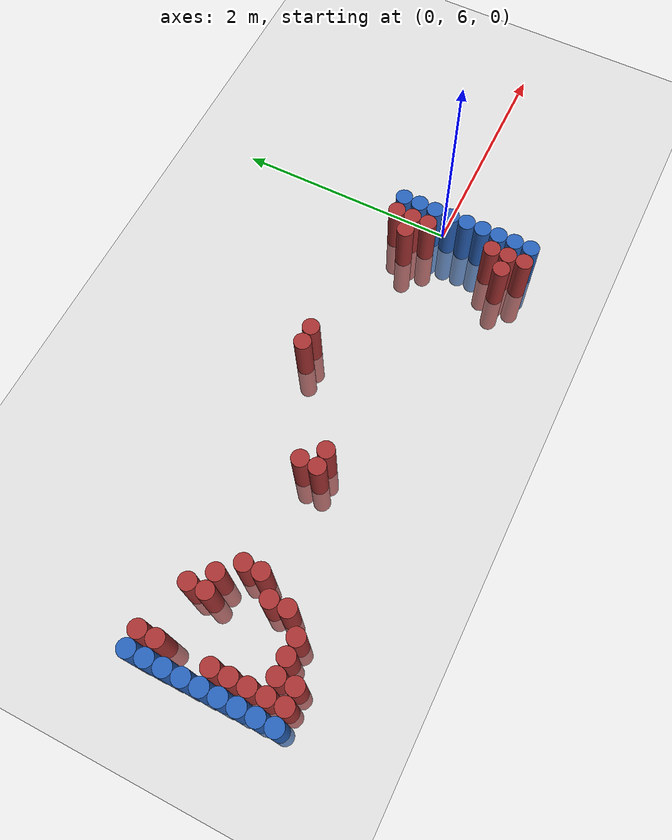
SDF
<sdf version="1.6">
 <world name="default">
  <model name="ground_plane">
   <static>1</static>
   <link name="link">
    <collision name="collision">
     <geometry><plane><normal>0 0 1</normal><size>100 100</size></plane></geometry>
     <surface><friction><ode><mu>100</mu><mu2>50</mu2></ode></friction></surface>
    </collision>
    <visual name="visual">
     <cast_shadows>0</cast_shadows>
     <geometry><plane><normal>0 0 1</normal><size>100 100</size></plane></geometry>
     <material>
      <script><uri>file://media/materials/scripts/gazebo.material</uri><name>Gazebo/Grey</name></script>
     </material>
    </visual>
   </link>
  </model>
  <model name="unit_cylinder_97">
   <static>1</static>
   <pose>-4.425000 5.325000 0.000000 0.000000 0.000000 0.000000</pose>
   <link name="link">
    <inertial>
     <mass>1</mass>
     <inertia><ixx>0.145833</ixx><ixy>0</ixy><ixz>0</ixz><iyy>0.145833</iyy><iyz>0</iyz><izz>0.125</izz></inertia>
    </inertial>
    <collision name="collision">
     <geometry><cylinder><radius>0.075000</radius><length>1</length></cylinder></geometry>
    </collision>
    <visual name="visual">
     <geometry><cylinder><radius>0.075000</radius><length>1</length></cylinder></geometry>
     <material>
      <ambient>0.152000 0.379000 0.720000 1</ambient>
      <diffuse>0.152000 0.379000 0.720000 1</diffuse>
     </material>
     <material>
      <script><name>Gazebo/Grey</name><uri>file://media/materials/scripts/gazebo.material</uri></script>
     </material>
    </visual>
   </link>
  </model>
  <model name="unit_cylinder_98">
   <static>1</static>
   <pose>-4.425000 5.475000 0.000000 0.000000 0.000000 0.000000</pose>
   <link name="link">
    <inertial>
     <mass>1</mass>
     <inertia><ixx>0.145833</ixx><ixy>0</ixy><ixz>0</ixz><iyy>0.145833</iyy><iyz>0</iyz><izz>0.125</izz></inertia>
    </inertial>
    <collision name="collision">
     <geometry><cylinder><radius>0.075000</radius><length>1</length></cylinder></geometry>
    </collision>
    <visual name="visual">
     <geometry><cylinder><radius>0.075000</radius><length>1</length></cylinder></geometry>
     <material>
      <ambient>0.152000 0.379000 0.720000 1</ambient>
      <diffuse>0.152000 0.379000 0.720000 1</diffuse>
     </material>
     <material>
      <script><name>Gazebo/Grey</name><uri>file://media/materials/scripts/gazebo.material</uri></script>
     </material>
    </visual>
   </link>
  </model>
  <model name="unit_cylinder_99">
   <static>1</static>
   <pose>-4.425000 5.625000 0.000000 0.000000 0.000000 0.000000</pose>
   <link name="link">
    <inertial>
     <mass>1</mass>
     <inertia><ixx>0.145833</ixx><ixy>0</ixy><ixz>0</ixz><iyy>0.145833</iyy><iyz>0</iyz><izz>0.125</izz></inertia>
    </inertial>
    <collision name="collision">
     <geometry><cylinder><radius>0.075000</radius><length>1</length></cylinder></geometry>
    </collision>
    <visual name="visual">
     <geometry><cylinder><radius>0.075000</radius><length>1</length></cylinder></geometry>
     <material>
      <ambient>0.152000 0.379000 0.720000 1</ambient>
      <diffuse>0.152000 0.379000 0.720000 1</diffuse>
     </material>
     <material>
      <script><name>Gazebo/Grey</name><uri>file://media/materials/scripts/gazebo.material</uri></script>
     </material>
    </visual>
   </link>
  </model>
  <model name="unit_cylinder_100">
   <static>1</static>
   <pose>-4.425000 5.775000 0.000000 0.000000 0.000000 0.000000</pose>
   <link name="link">
    <inertial>
     <mass>1</mass>
     <inertia><ixx>0.145833</ixx><ixy>0</ixy><ixz>0</ixz><iyy>0.145833</iyy><iyz>0</iyz><izz>0.125</izz></inertia>
    </inertial>
    <collision name="collision">
     <geometry><cylinder><radius>0.075000</radius><length>1</length></cylinder></geometry>
    </collision>
    <visual name="visual">
     <geometry><cylinder><radius>0.075000</radius><length>1</length></cylinder></geometry>
     <material>
      <ambient>0.152000 0.379000 0.720000 1</ambient>
      <diffuse>0.152000 0.379000 0.720000 1</diffuse>
     </material>
     <material>
      <script><name>Gazebo/Grey</name><uri>file://media/materials/scripts/gazebo.material</uri></script>
     </material>
    </visual>
   </link>
  </model>
  <model name="unit_cylinder_101">
   <static>1</static>
   <pose>-4.425000 5.925000 0.000000 0.000000 0.000000 0.000000</pose>
   <link name="link">
    <inertial>
     <mass>1</mass>
     <inertia><ixx>0.145833</ixx><ixy>0</ixy><ixz>0</ixz><iyy>0.145833</iyy><iyz>0</iyz><izz>0.125</izz></inertia>
    </inertial>
    <collision name="collision">
     <geometry><cylinder><radius>0.075000</radius><length>1</length></cylinder></geometry>
    </collision>
    <visual name="visual">
     <geometry><cylinder><radius>0.075000</radius><length>1</length></cylinder></geometry>
     <material>
      <ambient>0.152000 0.379000 0.720000 1</ambient>
      <diffuse>0.152000 0.379000 0.720000 1</diffuse>
     </material>
     <material>
      <script><name>Gazebo/Grey</name><uri>file://media/materials/scripts/gazebo.material</uri></script>
     </material>
    </visual>
   </link>
  </model>
  <model name="unit_cylinder_102">
   <static>1</static>
   <pose>-4.425000 6.075000 0.000000 0.000000 0.000000 0.000000</pose>
   <link name="link">
    <inertial>
     <mass>1</mass>
     <inertia><ixx>0.145833</ixx><ixy>0</ixy><ixz>0</ixz><iyy>0.145833</iyy><iyz>0</iyz><izz>0.125</izz></inertia>
    </inertial>
    <collision name="collision">
     <geometry><cylinder><radius>0.075000</radius><length>1</length></cylinder></geometry>
    </collision>
    <visual name="visual">
     <geometry><cylinder><radius>0.075000</radius><length>1</length></cylinder></geometry>
     <material>
      <ambient>0.152000 0.379000 0.720000 1</ambient>
      <diffuse>0.152000 0.379000 0.720000 1</diffuse>
     </material>
     <material>
      <script><name>Gazebo/Grey</name><uri>file://media/materials/scripts/gazebo.material</uri></script>
     </material>
    </visual>
   </link>
  </model>
  <model name="unit_cylinder_103">
   <static>1</static>
   <pose>-4.425000 6.225000 0.000000 0.000000 0.000000 0.000000</pose>
   <link name="link">
    <inertial>
     <mass>1</mass>
     <inertia><ixx>0.145833</ixx><ixy>0</ixy><ixz>0</ixz><iyy>0.145833</iyy><iyz>0</iyz><izz>0.125</izz></inertia>
    </inertial>
    <collision name="collision">
     <geometry><cylinder><radius>0.075000</radius><length>1</length></cylinder></geometry>
    </collision>
    <visual name="visual">
     <geometry><cylinder><radius>0.075000</radius><length>1</length></cylinder></geometry>
     <material>
      <ambient>0.152000 0.379000 0.720000 1</ambient>
      <diffuse>0.152000 0.379000 0.720000 1</diffuse>
     </material>
     <material>
      <script><name>Gazebo/Grey</name><uri>file://media/materials/scripts/gazebo.material</uri></script>
     </material>
    </visual>
   </link>
  </model>
  <model name="unit_cylinder_104">
   <static>1</static>
   <pose>-4.425000 6.375000 0.000000 0.000000 0.000000 0.000000</pose>
   <link name="link">
    <inertial>
     <mass>1</mass>
     <inertia><ixx>0.145833</ixx><ixy>0</ixy><ixz>0</ixz><iyy>0.145833</iyy><iyz>0</iyz><izz>0.125</izz></inertia>
    </inertial>
    <collision name="collision">
     <geometry><cylinder><radius>0.075000</radius><length>1</length></cylinder></geometry>
    </collision>
    <visual name="visual">
     <geometry><cylinder><radius>0.075000</radius><length>1</length></cylinder></geometry>
     <material>
      <ambient>0.152000 0.379000 0.720000 1</ambient>
      <diffuse>0.152000 0.379000 0.720000 1</diffuse>
     </material>
     <material>
      <script><name>Gazebo/Grey</name><uri>file://media/materials/scripts/gazebo.material</uri></script>
     </material>
    </visual>
   </link>
  </model>
  <model name="unit_cylinder_105">
   <static>1</static>
   <pose>-4.425000 6.525000 0.000000 0.000000 0.000000 0.000000</pose>
   <link name="link">
    <inertial>
     <mass>1</mass>
     <inertia><ixx>0.145833</ixx><ixy>0</ixy><ixz>0</ixz><iyy>0.145833</iyy><iyz>0</iyz><izz>0.125</izz></inertia>
    </inertial>
    <collision name="collision">
     <geometry><cylinder><radius>0.075000</radius><length>1</length></cylinder></geometry>
    </collision>
    <visual name="visual">
     <geometry><cylinder><radius>0.075000</radius><length>1</length></cylinder></geometry>
     <material>
      <ambient>0.152000 0.379000 0.720000 1</ambient>
      <diffuse>0.152000 0.379000 0.720000 1</diffuse>
     </material>
     <material>
      <script><name>Gazebo/Grey</name><uri>file://media/materials/scripts/gazebo.material</uri></script>
     </material>
    </visual>
   </link>
  </model>
  <model name="unit_cylinder_126">
   <static>1</static>
   <pose>-4.275000 5.325000 0.000000 0.000000 0.000000 0.000000</pose>
   <link name="link">
    <inertial>
     <mass>1</mass>
     <inertia><ixx>0.145833</ixx><ixy>0</ixy><ixz>0</ixz><iyy>0.145833</iyy><iyz>0</iyz><izz>0.125</izz></inertia>
    </inertial>
    <collision name="collision">
     <geometry><cylinder><radius>0.075000</radius><length>1</length></cylinder></geometry>
    </collision>
    <visual name="visual">
     <geometry><cylinder><radius>0.075000</radius><length>1</length></cylinder></geometry>
     <material>
      <ambient>0.648000 0.192000 0.192000 1</ambient>
      <diffuse>0.648000 0.192000 0.192000 1</diffuse>
     </material>
     <material>
      <script><name>Gazebo/Grey</name><uri>file://media/materials/scripts/gazebo.material</uri></script>
     </material>
    </visual>
   </link>
  </model>
  <model name="unit_cylinder_127">
   <static>1</static>
   <pose>-4.275000 5.475000 0.000000 0.000000 0.000000 0.000000</pose>
   <link name="link">
    <inertial>
     <mass>1</mass>
     <inertia><ixx>0.145833</ixx><ixy>0</ixy><ixz>0</ixz><iyy>0.145833</iyy><iyz>0</iyz><izz>0.125</izz></inertia>
    </inertial>
    <collision name="collision">
     <geometry><cylinder><radius>0.075000</radius><length>1</length></cylinder></geometry>
    </collision>
    <visual name="visual">
     <geometry><cylinder><radius>0.075000</radius><length>1</length></cylinder></geometry>
     <material>
      <ambient>0.648000 0.192000 0.192000 1</ambient>
      <diffuse>0.648000 0.192000 0.192000 1</diffuse>
     </material>
     <material>
      <script><name>Gazebo/Grey</name><uri>file://media/materials/scripts/gazebo.material</uri></script>
     </material>
    </visual>
   </link>
  </model>
  <model name="unit_cylinder_128">
   <static>1</static>
   <pose>-4.275000 5.625000 0.000000 0.000000 0.000000 0.000000</pose>
   <link name="link">
    <inertial>
     <mass>1</mass>
     <inertia><ixx>0.145833</ixx><ixy>0</ixy><ixz>0</ixz><iyy>0.145833</iyy><iyz>0</iyz><izz>0.125</izz></inertia>
    </inertial>
    <collision name="collision">
     <geometry><cylinder><radius>0.075000</radius><length>1</length></cylinder></geometry>
    </collision>
    <visual name="visual">
     <geometry><cylinder><radius>0.075000</radius><length>1</length></cylinder></geometry>
     <material>
      <ambient>0.648000 0.192000 0.192000 1</ambient>
      <diffuse>0.648000 0.192000 0.192000 1</diffuse>
     </material>
     <material>
      <script><name>Gazebo/Grey</name><uri>file://media/materials/scripts/gazebo.material</uri></script>
     </material>
    </visual>
   </link>
  </model>
  <model name="unit_cylinder_129">
   <static>1</static>
   <pose>-4.275000 5.775000 0.000000 0.000000 0.000000 0.000000</pose>
   <link name="link">
    <inertial>
     <mass>1</mass>
     <inertia><ixx>0.145833</ixx><ixy>0</ixy><ixz>0</ixz><iyy>0.145833</iyy><iyz>0</iyz><izz>0.125</izz></inertia>
    </inertial>
    <collision name="collision">
     <geometry><cylinder><radius>0.075000</radius><length>1</length></cylinder></geometry>
    </collision>
    <visual name="visual">
     <geometry><cylinder><radius>0.075000</radius><length>1</length></cylinder></geometry>
     <material>
      <ambient>0.648000 0.192000 0.192000 1</ambient>
      <diffuse>0.648000 0.192000 0.192000 1</diffuse>
     </material>
     <material>
      <script><name>Gazebo/Grey</name><uri>file://media/materials/scripts/gazebo.material</uri></script>
     </material>
    </visual>
   </link>
  </model>
  <model name="unit_cylinder_130">
   <static>1</static>
   <pose>-4.275000 5.925000 0.000000 0.000000 0.000000 0.000000</pose>
   <link name="link">
    <inertial>
     <mass>1</mass>
     <inertia><ixx>0.145833</ixx><ixy>0</ixy><ixz>0</ixz><iyy>0.145833</iyy><iyz>0</iyz><izz>0.125</izz></inertia>
    </inertial>
    <collision name="collision">
     <geometry><cylinder><radius>0.075000</radius><length>1</length></cylinder></geometry>
    </collision>
    <visual name="visual">
     <geometry><cylinder><radius>0.075000</radius><length>1</length></cylinder></geometry>
     <material>
      <ambient>0.648000 0.192000 0.192000 1</ambient>
      <diffuse>0.648000 0.192000 0.192000 1</diffuse>
     </material>
     <material>
      <script><name>Gazebo/Grey</name><uri>file://media/materials/scripts/gazebo.material</uri></script>
     </material>
    </visual>
   </link>
  </model>
  <model name="unit_cylinder_131">
   <static>1</static>
   <pose>-4.275000 6.375000 0.000000 0.000000 0.000000 0.000000</pose>
   <link name="link">
    <inertial>
     <mass>1</mass>
     <inertia><ixx>0.145833</ixx><ixy>0</ixy><ixz>0</ixz><iyy>0.145833</iyy><iyz>0</iyz><izz>0.125</izz></inertia>
    </inertial>
    <collision name="collision">
     <geometry><cylinder><radius>0.075000</radius><length>1</length></cylinder></geometry>
    </collision>
    <visual name="visual">
     <geometry><cylinder><radius>0.075000</radius><length>1</length></cylinder></geometry>
     <material>
      <ambient>0.648000 0.192000 0.192000 1</ambient>
      <diffuse>0.648000 0.192000 0.192000 1</diffuse>
     </material>
     <material>
      <script><name>Gazebo/Grey</name><uri>file://media/materials/scripts/gazebo.material</uri></script>
     </material>
    </visual>
   </link>
  </model>
  <model name="unit_cylinder_132">
   <static>1</static>
   <pose>-4.275000 6.525000 0.000000 0.000000 0.000000 0.000000</pose>
   <link name="link">
    <inertial>
     <mass>1</mass>
     <inertia><ixx>0.145833</ixx><ixy>0</ixy><ixz>0</ixz><iyy>0.145833</iyy><iyz>0</iyz><izz>0.125</izz></inertia>
    </inertial>
    <collision name="collision">
     <geometry><cylinder><radius>0.075000</radius><length>1</length></cylinder></geometry>
    </collision>
    <visual name="visual">
     <geometry><cylinder><radius>0.075000</radius><length>1</length></cylinder></geometry>
     <material>
      <ambient>0.648000 0.192000 0.192000 1</ambient>
      <diffuse>0.648000 0.192000 0.192000 1</diffuse>
     </material>
     <material>
      <script><name>Gazebo/Grey</name><uri>file://media/materials/scripts/gazebo.material</uri></script>
     </material>
    </visual>
   </link>
  </model>
  <model name="unit_cylinder_140">
   <static>1</static>
   <pose>-4.125000 5.325000 0.000000 0.000000 0.000000 0.000000</pose>
   <link name="link">
    <inertial>
     <mass>1</mass>
     <inertia><ixx>0.145833</ixx><ixy>0</ixy><ixz>0</ixz><iyy>0.145833</iyy><iyz>0</iyz><izz>0.125</izz></inertia>
    </inertial>
    <collision name="collision">
     <geometry><cylinder><radius>0.075000</radius><length>1</length></cylinder></geometry>
    </collision>
    <visual name="visual">
     <geometry><cylinder><radius>0.075000</radius><length>1</length></cylinder></geometry>
     <material>
      <ambient>0.648000 0.192000 0.192000 1</ambient>
      <diffuse>0.648000 0.192000 0.192000 1</diffuse>
     </material>
     <material>
      <script><name>Gazebo/Grey</name><uri>file://media/materials/scripts/gazebo.material</uri></script>
     </material>
    </visual>
   </link>
  </model>
  <model name="unit_cylinder_141">
   <static>1</static>
   <pose>-4.125000 5.475000 0.000000 0.000000 0.000000 0.000000</pose>
   <link name="link">
    <inertial>
     <mass>1</mass>
     <inertia><ixx>0.145833</ixx><ixy>0</ixy><ixz>0</ixz><iyy>0.145833</iyy><iyz>0</iyz><izz>0.125</izz></inertia>
    </inertial>
    <collision name="collision">
     <geometry><cylinder><radius>0.075000</radius><length>1</length></cylinder></geometry>
    </collision>
    <visual name="visual">
     <geometry><cylinder><radius>0.075000</radius><length>1</length></cylinder></geometry>
     <material>
      <ambient>0.648000 0.192000 0.192000 1</ambient>
      <diffuse>0.648000 0.192000 0.192000 1</diffuse>
     </material>
     <material>
      <script><name>Gazebo/Grey</name><uri>file://media/materials/scripts/gazebo.material</uri></script>
     </material>
    </visual>
   </link>
  </model>
  <model name="unit_cylinder_145">
   <static>1</static>
   <pose>-3.975000 5.475000 0.000000 0.000000 0.000000 0.000000</pose>
   <link name="link">
    <inertial>
     <mass>1</mass>
     <inertia><ixx>0.145833</ixx><ixy>0</ixy><ixz>0</ixz><iyy>0.145833</iyy><iyz>0</iyz><izz>0.125</izz></inertia>
    </inertial>
    <collision name="collision">
     <geometry><cylinder><radius>0.075000</radius><length>1</length></cylinder></geometry>
    </collision>
    <visual name="visual">
     <geometry><cylinder><radius>0.075000</radius><length>1</length></cylinder></geometry>
     <material>
      <ambient>0.648000 0.192000 0.192000 1</ambient>
      <diffuse>0.648000 0.192000 0.192000 1</diffuse>
     </material>
     <material>
      <script><name>Gazebo/Grey</name><uri>file://media/materials/scripts/gazebo.material</uri></script>
     </material>
    </visual>
   </link>
  </model>
  <model name="unit_cylinder_155">
   <static>1</static>
   <pose>-3.825000 5.475000 0.000000 0.000000 0.000000 0.000000</pose>
   <link name="link">
    <inertial>
     <mass>1</mass>
     <inertia><ixx>0.145833</ixx><ixy>0</ixy><ixz>0</ixz><iyy>0.145833</iyy><iyz>0</iyz><izz>0.125</izz></inertia>
    </inertial>
    <collision name="collision">
     <geometry><cylinder><radius>0.075000</radius><length>1</length></cylinder></geometry>
    </collision>
    <visual name="visual">
     <geometry><cylinder><radius>0.075000</radius><length>1</length></cylinder></geometry>
     <material>
      <ambient>0.648000 0.192000 0.192000 1</ambient>
      <diffuse>0.648000 0.192000 0.192000 1</diffuse>
     </material>
     <material>
      <script><name>Gazebo/Grey</name><uri>file://media/materials/scripts/gazebo.material</uri></script>
     </material>
    </visual>
   </link>
  </model>
  <model name="unit_cylinder_156">
   <static>1</static>
   <pose>-3.825000 6.225000 0.000000 0.000000 0.000000 0.000000</pose>
   <link name="link">
    <inertial>
     <mass>1</mass>
     <inertia><ixx>0.145833</ixx><ixy>0</ixy><ixz>0</ixz><iyy>0.145833</iyy><iyz>0</iyz><izz>0.125</izz></inertia>
    </inertial>
    <collision name="collision">
     <geometry><cylinder><radius>0.075000</radius><length>1</length></cylinder></geometry>
    </collision>
    <visual name="visual">
     <geometry><cylinder><radius>0.075000</radius><length>1</length></cylinder></geometry>
     <material>
      <ambient>0.648000 0.192000 0.192000 1</ambient>
      <diffuse>0.648000 0.192000 0.192000 1</diffuse>
     </material>
     <material>
      <script><name>Gazebo/Grey</name><uri>file://media/materials/scripts/gazebo.material</uri></script>
     </material>
    </visual>
   </link>
  </model>
  <model name="unit_cylinder_157">
   <static>1</static>
   <pose>-3.825000 6.375000 0.000000 0.000000 0.000000 0.000000</pose>
   <link name="link">
    <inertial>
     <mass>1</mass>
     <inertia><ixx>0.145833</ixx><ixy>0</ixy><ixz>0</ixz><iyy>0.145833</iyy><iyz>0</iyz><izz>0.125</izz></inertia>
    </inertial>
    <collision name="collision">
     <geometry><cylinder><radius>0.075000</radius><length>1</length></cylinder></geometry>
    </collision>
    <visual name="visual">
     <geometry><cylinder><radius>0.075000</radius><length>1</length></cylinder></geometry>
     <material>
      <ambient>0.648000 0.192000 0.192000 1</ambient>
      <diffuse>0.648000 0.192000 0.192000 1</diffuse>
     </material>
     <material>
      <script><name>Gazebo/Grey</name><uri>file://media/materials/scripts/gazebo.material</uri></script>
     </material>
    </visual>
   </link>
  </model>
  <model name="unit_cylinder_169">
   <static>1</static>
   <pose>-3.675000 5.625000 0.000000 0.000000 0.000000 0.000000</pose>
   <link name="link">
    <inertial>
     <mass>1</mass>
     <inertia><ixx>0.145833</ixx><ixy>0</ixy><ixz>0</ixz><iyy>0.145833</iyy><iyz>0</iyz><izz>0.125</izz></inertia>
    </inertial>
    <collision name="collision">
     <geometry><cylinder><radius>0.075000</radius><length>1</length></cylinder></geometry>
    </collision>
    <visual name="visual">
     <geometry><cylinder><radius>0.075000</radius><length>1</length></cylinder></geometry>
     <material>
      <ambient>0.648000 0.192000 0.192000 1</ambient>
      <diffuse>0.648000 0.192000 0.192000 1</diffuse>
     </material>
     <material>
      <script><name>Gazebo/Grey</name><uri>file://media/materials/scripts/gazebo.material</uri></script>
     </material>
    </visual>
   </link>
  </model>
  <model name="unit_cylinder_170">
   <static>1</static>
   <pose>-3.675000 5.775000 0.000000 0.000000 0.000000 0.000000</pose>
   <link name="link">
    <inertial>
     <mass>1</mass>
     <inertia><ixx>0.145833</ixx><ixy>0</ixy><ixz>0</ixz><iyy>0.145833</iyy><iyz>0</iyz><izz>0.125</izz></inertia>
    </inertial>
    <collision name="collision">
     <geometry><cylinder><radius>0.075000</radius><length>1</length></cylinder></geometry>
    </collision>
    <visual name="visual">
     <geometry><cylinder><radius>0.075000</radius><length>1</length></cylinder></geometry>
     <material>
      <ambient>0.648000 0.192000 0.192000 1</ambient>
      <diffuse>0.648000 0.192000 0.192000 1</diffuse>
     </material>
     <material>
      <script><name>Gazebo/Grey</name><uri>file://media/materials/scripts/gazebo.material</uri></script>
     </material>
    </visual>
   </link>
  </model>
  <model name="unit_cylinder_171">
   <static>1</static>
   <pose>-3.675000 6.225000 0.000000 0.000000 0.000000 0.000000</pose>
   <link name="link">
    <inertial>
     <mass>1</mass>
     <inertia><ixx>0.145833</ixx><ixy>0</ixy><ixz>0</ixz><iyy>0.145833</iyy><iyz>0</iyz><izz>0.125</izz></inertia>
    </inertial>
    <collision name="collision">
     <geometry><cylinder><radius>0.075000</radius><length>1</length></cylinder></geometry>
    </collision>
    <visual name="visual">
     <geometry><cylinder><radius>0.075000</radius><length>1</length></cylinder></geometry>
     <material>
      <ambient>0.648000 0.192000 0.192000 1</ambient>
      <diffuse>0.648000 0.192000 0.192000 1</diffuse>
     </material>
     <material>
      <script><name>Gazebo/Grey</name><uri>file://media/materials/scripts/gazebo.material</uri></script>
     </material>
    </visual>
   </link>
  </model>
  <model name="unit_cylinder_179">
   <static>1</static>
   <pose>-3.525000 5.925000 0.000000 0.000000 0.000000 0.000000</pose>
   <link name="link">
    <inertial>
     <mass>1</mass>
     <inertia><ixx>0.145833</ixx><ixy>0</ixy><ixz>0</ixz><iyy>0.145833</iyy><iyz>0</iyz><izz>0.125</izz></inertia>
    </inertial>
    <collision name="collision">
     <geometry><cylinder><radius>0.075000</radius><length>1</length></cylinder></geometry>
    </collision>
    <visual name="visual">
     <geometry><cylinder><radius>0.075000</radius><length>1</length></cylinder></geometry>
     <material>
      <ambient>0.648000 0.192000 0.192000 1</ambient>
      <diffuse>0.648000 0.192000 0.192000 1</diffuse>
     </material>
     <material>
      <script><name>Gazebo/Grey</name><uri>file://media/materials/scripts/gazebo.material</uri></script>
     </material>
    </visual>
   </link>
  </model>
  <model name="unit_cylinder_180">
   <static>1</static>
   <pose>-3.525000 6.075000 0.000000 0.000000 0.000000 0.000000</pose>
   <link name="link">
    <inertial>
     <mass>1</mass>
     <inertia><ixx>0.145833</ixx><ixy>0</ixy><ixz>0</ixz><iyy>0.145833</iyy><iyz>0</iyz><izz>0.125</izz></inertia>
    </inertial>
    <collision name="collision">
     <geometry><cylinder><radius>0.075000</radius><length>1</length></cylinder></geometry>
    </collision>
    <visual name="visual">
     <geometry><cylinder><radius>0.075000</radius><length>1</length></cylinder></geometry>
     <material>
      <ambient>0.648000 0.192000 0.192000 1</ambient>
      <diffuse>0.648000 0.192000 0.192000 1</diffuse>
     </material>
     <material>
      <script><name>Gazebo/Grey</name><uri>file://media/materials/scripts/gazebo.material</uri></script>
     </material>
    </visual>
   </link>
  </model>
  <model name="unit_cylinder_199">
   <static>1</static>
   <pose>-2.625000 5.925000 0.000000 0.000000 0.000000 0.000000</pose>
   <link name="link">
    <inertial>
     <mass>1</mass>
     <inertia><ixx>0.145833</ixx><ixy>0</ixy><ixz>0</ixz><iyy>0.145833</iyy><iyz>0</iyz><izz>0.125</izz></inertia>
    </inertial>
    <collision name="collision">
     <geometry><cylinder><radius>0.075000</radius><length>1</length></cylinder></geometry>
    </collision>
    <visual name="visual">
     <geometry><cylinder><radius>0.075000</radius><length>1</length></cylinder></geometry>
     <material>
      <ambient>0.648000 0.192000 0.192000 1</ambient>
      <diffuse>0.648000 0.192000 0.192000 1</diffuse>
     </material>
     <material>
      <script><name>Gazebo/Grey</name><uri>file://media/materials/scripts/gazebo.material</uri></script>
     </material>
    </visual>
   </link>
  </model>
  <model name="unit_cylinder_200">
   <static>1</static>
   <pose>-2.625000 6.075000 0.000000 0.000000 0.000000 0.000000</pose>
   <link name="link">
    <inertial>
     <mass>1</mass>
     <inertia><ixx>0.145833</ixx><ixy>0</ixy><ixz>0</ixz><iyy>0.145833</iyy><iyz>0</iyz><izz>0.125</izz></inertia>
    </inertial>
    <collision name="collision">
     <geometry><cylinder><radius>0.075000</radius><length>1</length></cylinder></geometry>
    </collision>
    <visual name="visual">
     <geometry><cylinder><radius>0.075000</radius><length>1</length></cylinder></geometry>
     <material>
      <ambient>0.648000 0.192000 0.192000 1</ambient>
      <diffuse>0.648000 0.192000 0.192000 1</diffuse>
     </material>
     <material>
      <script><name>Gazebo/Grey</name><uri>file://media/materials/scripts/gazebo.material</uri></script>
     </material>
    </visual>
   </link>
  </model>
  <model name="unit_cylinder_208">
   <static>1</static>
   <pose>-2.475000 5.925000 0.000000 0.000000 0.000000 0.000000</pose>
   <link name="link">
    <inertial>
     <mass>1</mass>
     <inertia><ixx>0.145833</ixx><ixy>0</ixy><ixz>0</ixz><iyy>0.145833</iyy><iyz>0</iyz><izz>0.125</izz></inertia>
    </inertial>
    <collision name="collision">
     <geometry><cylinder><radius>0.075000</radius><length>1</length></cylinder></geometry>
    </collision>
    <visual name="visual">
     <geometry><cylinder><radius>0.075000</radius><length>1</length></cylinder></geometry>
     <material>
      <ambient>0.648000 0.192000 0.192000 1</ambient>
      <diffuse>0.648000 0.192000 0.192000 1</diffuse>
     </material>
     <material>
      <script><name>Gazebo/Grey</name><uri>file://media/materials/scripts/gazebo.material</uri></script>
     </material>
    </visual>
   </link>
  </model>
  <model name="unit_cylinder_223">
   <static>1</static>
   <pose>-1.725000 6.525000 0.000000 0.000000 0.000000 0.000000</pose>
   <link name="link">
    <inertial>
     <mass>1</mass>
     <inertia><ixx>0.145833</ixx><ixy>0</ixy><ixz>0</ixz><iyy>0.145833</iyy><iyz>0</iyz><izz>0.125</izz></inertia>
    </inertial>
    <collision name="collision">
     <geometry><cylinder><radius>0.075000</radius><length>1</length></cylinder></geometry>
    </collision>
    <visual name="visual">
     <geometry><cylinder><radius>0.075000</radius><length>1</length></cylinder></geometry>
     <material>
      <ambient>0.648000 0.192000 0.192000 1</ambient>
      <diffuse>0.648000 0.192000 0.192000 1</diffuse>
     </material>
     <material>
      <script><name>Gazebo/Grey</name><uri>file://media/materials/scripts/gazebo.material</uri></script>
     </material>
    </visual>
   </link>
  </model>
  <model name="unit_cylinder_225">
   <static>1</static>
   <pose>-1.575000 6.525000 0.000000 0.000000 0.000000 0.000000</pose>
   <link name="link">
    <inertial>
     <mass>1</mass>
     <inertia><ixx>0.145833</ixx><ixy>0</ixy><ixz>0</ixz><iyy>0.145833</iyy><iyz>0</iyz><izz>0.125</izz></inertia>
    </inertial>
    <collision name="collision">
     <geometry><cylinder><radius>0.075000</radius><length>1</length></cylinder></geometry>
    </collision>
    <visual name="visual">
     <geometry><cylinder><radius>0.075000</radius><length>1</length></cylinder></geometry>
     <material>
      <ambient>0.648000 0.192000 0.192000 1</ambient>
      <diffuse>0.648000 0.192000 0.192000 1</diffuse>
     </material>
     <material>
      <script><name>Gazebo/Grey</name><uri>file://media/materials/scripts/gazebo.material</uri></script>
     </material>
    </visual>
   </link>
  </model>
  <model name="unit_cylinder_233">
   <static>1</static>
   <pose>-0.375000 5.325000 0.000000 0.000000 0.000000 0.000000</pose>
   <link name="link">
    <inertial>
     <mass>1</mass>
     <inertia><ixx>0.145833</ixx><ixy>0</ixy><ixz>0</ixz><iyy>0.145833</iyy><iyz>0</iyz><izz>0.125</izz></inertia>
    </inertial>
    <collision name="collision">
     <geometry><cylinder><radius>0.075000</radius><length>1</length></cylinder></geometry>
    </collision>
    <visual name="visual">
     <geometry><cylinder><radius>0.075000</radius><length>1</length></cylinder></geometry>
     <material>
      <ambient>0.648000 0.192000 0.192000 1</ambient>
      <diffuse>0.648000 0.192000 0.192000 1</diffuse>
     </material>
     <material>
      <script><name>Gazebo/Grey</name><uri>file://media/materials/scripts/gazebo.material</uri></script>
     </material>
    </visual>
   </link>
  </model>
  <model name="unit_cylinder_234">
   <static>1</static>
   <pose>-0.375000 6.225000 0.000000 0.000000 0.000000 0.000000</pose>
   <link name="link">
    <inertial>
     <mass>1</mass>
     <inertia><ixx>0.145833</ixx><ixy>0</ixy><ixz>0</ixz><iyy>0.145833</iyy><iyz>0</iyz><izz>0.125</izz></inertia>
    </inertial>
    <collision name="collision">
     <geometry><cylinder><radius>0.075000</radius><length>1</length></cylinder></geometry>
    </collision>
    <visual name="visual">
     <geometry><cylinder><radius>0.075000</radius><length>1</length></cylinder></geometry>
     <material>
      <ambient>0.648000 0.192000 0.192000 1</ambient>
      <diffuse>0.648000 0.192000 0.192000 1</diffuse>
     </material>
     <material>
      <script><name>Gazebo/Grey</name><uri>file://media/materials/scripts/gazebo.material</uri></script>
     </material>
    </visual>
   </link>
  </model>
  <model name="unit_cylinder_242">
   <static>1</static>
   <pose>-0.225000 5.175000 0.000000 0.000000 0.000000 0.000000</pose>
   <link name="link">
    <inertial>
     <mass>1</mass>
     <inertia><ixx>0.145833</ixx><ixy>0</ixy><ixz>0</ixz><iyy>0.145833</iyy><iyz>0</iyz><izz>0.125</izz></inertia>
    </inertial>
    <collision name="collision">
     <geometry><cylinder><radius>0.075000</radius><length>1</length></cylinder></geometry>
    </collision>
    <visual name="visual">
     <geometry><cylinder><radius>0.075000</radius><length>1</length></cylinder></geometry>
     <material>
      <ambient>0.648000 0.192000 0.192000 1</ambient>
      <diffuse>0.648000 0.192000 0.192000 1</diffuse>
     </material>
     <material>
      <script><name>Gazebo/Grey</name><uri>file://media/materials/scripts/gazebo.material</uri></script>
     </material>
    </visual>
   </link>
  </model>
  <model name="unit_cylinder_243">
   <static>1</static>
   <pose>-0.225000 5.325000 0.000000 0.000000 0.000000 0.000000</pose>
   <link name="link">
    <inertial>
     <mass>1</mass>
     <inertia><ixx>0.145833</ixx><ixy>0</ixy><ixz>0</ixz><iyy>0.145833</iyy><iyz>0</iyz><izz>0.125</izz></inertia>
    </inertial>
    <collision name="collision">
     <geometry><cylinder><radius>0.075000</radius><length>1</length></cylinder></geometry>
    </collision>
    <visual name="visual">
     <geometry><cylinder><radius>0.075000</radius><length>1</length></cylinder></geometry>
     <material>
      <ambient>0.648000 0.192000 0.192000 1</ambient>
      <diffuse>0.648000 0.192000 0.192000 1</diffuse>
     </material>
     <material>
      <script><name>Gazebo/Grey</name><uri>file://media/materials/scripts/gazebo.material</uri></script>
     </material>
    </visual>
   </link>
  </model>
  <model name="unit_cylinder_244">
   <static>1</static>
   <pose>-0.225000 5.475000 0.000000 0.000000 0.000000 0.000000</pose>
   <link name="link">
    <inertial>
     <mass>1</mass>
     <inertia><ixx>0.145833</ixx><ixy>0</ixy><ixz>0</ixz><iyy>0.145833</iyy><iyz>0</iyz><izz>0.125</izz></inertia>
    </inertial>
    <collision name="collision">
     <geometry><cylinder><radius>0.075000</radius><length>1</length></cylinder></geometry>
    </collision>
    <visual name="visual">
     <geometry><cylinder><radius>0.075000</radius><length>1</length></cylinder></geometry>
     <material>
      <ambient>0.648000 0.192000 0.192000 1</ambient>
      <diffuse>0.648000 0.192000 0.192000 1</diffuse>
     </material>
     <material>
      <script><name>Gazebo/Grey</name><uri>file://media/materials/scripts/gazebo.material</uri></script>
     </material>
    </visual>
   </link>
  </model>
  <model name="unit_cylinder_245">
   <static>1</static>
   <pose>-0.225000 6.075000 0.000000 0.000000 0.000000 0.000000</pose>
   <link name="link">
    <inertial>
     <mass>1</mass>
     <inertia><ixx>0.145833</ixx><ixy>0</ixy><ixz>0</ixz><iyy>0.145833</iyy><iyz>0</iyz><izz>0.125</izz></inertia>
    </inertial>
    <collision name="collision">
     <geometry><cylinder><radius>0.075000</radius><length>1</length></cylinder></geometry>
    </collision>
    <visual name="visual">
     <geometry><cylinder><radius>0.075000</radius><length>1</length></cylinder></geometry>
     <material>
      <ambient>0.648000 0.192000 0.192000 1</ambient>
      <diffuse>0.648000 0.192000 0.192000 1</diffuse>
     </material>
     <material>
      <script><name>Gazebo/Grey</name><uri>file://media/materials/scripts/gazebo.material</uri></script>
     </material>
    </visual>
   </link>
  </model>
  <model name="unit_cylinder_246">
   <static>1</static>
   <pose>-0.225000 6.225000 0.000000 0.000000 0.000000 0.000000</pose>
   <link name="link">
    <inertial>
     <mass>1</mass>
     <inertia><ixx>0.145833</ixx><ixy>0</ixy><ixz>0</ixz><iyy>0.145833</iyy><iyz>0</iyz><izz>0.125</izz></inertia>
    </inertial>
    <collision name="collision">
     <geometry><cylinder><radius>0.075000</radius><length>1</length></cylinder></geometry>
    </collision>
    <visual name="visual">
     <geometry><cylinder><radius>0.075000</radius><length>1</length></cylinder></geometry>
     <material>
      <ambient>0.648000 0.192000 0.192000 1</ambient>
      <diffuse>0.648000 0.192000 0.192000 1</diffuse>
     </material>
     <material>
      <script><name>Gazebo/Grey</name><uri>file://media/materials/scripts/gazebo.material</uri></script>
     </material>
    </visual>
   </link>
  </model>
  <model name="unit_cylinder_247">
   <static>1</static>
   <pose>-0.225000 6.375000 0.000000 0.000000 0.000000 0.000000</pose>
   <link name="link">
    <inertial>
     <mass>1</mass>
     <inertia><ixx>0.145833</ixx><ixy>0</ixy><ixz>0</ixz><iyy>0.145833</iyy><iyz>0</iyz><izz>0.125</izz></inertia>
    </inertial>
    <collision name="collision">
     <geometry><cylinder><radius>0.075000</radius><length>1</length></cylinder></geometry>
    </collision>
    <visual name="visual">
     <geometry><cylinder><radius>0.075000</radius><length>1</length></cylinder></geometry>
     <material>
      <ambient>0.648000 0.192000 0.192000 1</ambient>
      <diffuse>0.648000 0.192000 0.192000 1</diffuse>
     </material>
     <material>
      <script><name>Gazebo/Grey</name><uri>file://media/materials/scripts/gazebo.material</uri></script>
     </material>
    </visual>
   </link>
  </model>
  <model name="unit_cylinder_262">
   <static>1</static>
   <pose>-0.075000 5.175000 0.000000 0.000000 0.000000 0.000000</pose>
   <link name="link">
    <inertial>
     <mass>1</mass>
     <inertia><ixx>0.145833</ixx><ixy>0</ixy><ixz>0</ixz><iyy>0.145833</iyy><iyz>0</iyz><izz>0.125</izz></inertia>
    </inertial>
    <collision name="collision">
     <geometry><cylinder><radius>0.075000</radius><length>1</length></cylinder></geometry>
    </collision>
    <visual name="visual">
     <geometry><cylinder><radius>0.075000</radius><length>1</length></cylinder></geometry>
     <material>
      <ambient>0.152000 0.379000 0.720000 1</ambient>
      <diffuse>0.152000 0.379000 0.720000 1</diffuse>
     </material>
     <material>
      <script><name>Gazebo/Grey</name><uri>file://media/materials/scripts/gazebo.material</uri></script>
     </material>
    </visual>
   </link>
  </model>
  <model name="unit_cylinder_263">
   <static>1</static>
   <pose>-0.075000 5.325000 0.000000 0.000000 0.000000 0.000000</pose>
   <link name="link">
    <inertial>
     <mass>1</mass>
     <inertia><ixx>0.145833</ixx><ixy>0</ixy><ixz>0</ixz><iyy>0.145833</iyy><iyz>0</iyz><izz>0.125</izz></inertia>
    </inertial>
    <collision name="collision">
     <geometry><cylinder><radius>0.075000</radius><length>1</length></cylinder></geometry>
    </collision>
    <visual name="visual">
     <geometry><cylinder><radius>0.075000</radius><length>1</length></cylinder></geometry>
     <material>
      <ambient>0.152000 0.379000 0.720000 1</ambient>
      <diffuse>0.152000 0.379000 0.720000 1</diffuse>
     </material>
     <material>
      <script><name>Gazebo/Grey</name><uri>file://media/materials/scripts/gazebo.material</uri></script>
     </material>
    </visual>
   </link>
  </model>
  <model name="unit_cylinder_264">
   <static>1</static>
   <pose>-0.075000 5.475000 0.000000 0.000000 0.000000 0.000000</pose>
   <link name="link">
    <inertial>
     <mass>1</mass>
     <inertia><ixx>0.145833</ixx><ixy>0</ixy><ixz>0</ixz><iyy>0.145833</iyy><iyz>0</iyz><izz>0.125</izz></inertia>
    </inertial>
    <collision name="collision">
     <geometry><cylinder><radius>0.075000</radius><length>1</length></cylinder></geometry>
    </collision>
    <visual name="visual">
     <geometry><cylinder><radius>0.075000</radius><length>1</length></cylinder></geometry>
     <material>
      <ambient>0.152000 0.379000 0.720000 1</ambient>
      <diffuse>0.152000 0.379000 0.720000 1</diffuse>
     </material>
     <material>
      <script><name>Gazebo/Grey</name><uri>file://media/materials/scripts/gazebo.material</uri></script>
     </material>
    </visual>
   </link>
  </model>
  <model name="unit_cylinder_265">
   <static>1</static>
   <pose>-0.075000 5.625000 0.000000 0.000000 0.000000 0.000000</pose>
   <link name="link">
    <inertial>
     <mass>1</mass>
     <inertia><ixx>0.145833</ixx><ixy>0</ixy><ixz>0</ixz><iyy>0.145833</iyy><iyz>0</iyz><izz>0.125</izz></inertia>
    </inertial>
    <collision name="collision">
     <geometry><cylinder><radius>0.075000</radius><length>1</length></cylinder></geometry>
    </collision>
    <visual name="visual">
     <geometry><cylinder><radius>0.075000</radius><length>1</length></cylinder></geometry>
     <material>
      <ambient>0.152000 0.379000 0.720000 1</ambient>
      <diffuse>0.152000 0.379000 0.720000 1</diffuse>
     </material>
     <material>
      <script><name>Gazebo/Grey</name><uri>file://media/materials/scripts/gazebo.material</uri></script>
     </material>
    </visual>
   </link>
  </model>
  <model name="unit_cylinder_266">
   <static>1</static>
   <pose>-0.075000 5.775000 0.000000 0.000000 0.000000 0.000000</pose>
   <link name="link">
    <inertial>
     <mass>1</mass>
     <inertia><ixx>0.145833</ixx><ixy>0</ixy><ixz>0</ixz><iyy>0.145833</iyy><iyz>0</iyz><izz>0.125</izz></inertia>
    </inertial>
    <collision name="collision">
     <geometry><cylinder><radius>0.075000</radius><length>1</length></cylinder></geometry>
    </collision>
    <visual name="visual">
     <geometry><cylinder><radius>0.075000</radius><length>1</length></cylinder></geometry>
     <material>
      <ambient>0.152000 0.379000 0.720000 1</ambient>
      <diffuse>0.152000 0.379000 0.720000 1</diffuse>
     </material>
     <material>
      <script><name>Gazebo/Grey</name><uri>file://media/materials/scripts/gazebo.material</uri></script>
     </material>
    </visual>
   </link>
  </model>
  <model name="unit_cylinder_267">
   <static>1</static>
   <pose>-0.075000 5.925000 0.000000 0.000000 0.000000 0.000000</pose>
   <link name="link">
    <inertial>
     <mass>1</mass>
     <inertia><ixx>0.145833</ixx><ixy>0</ixy><ixz>0</ixz><iyy>0.145833</iyy><iyz>0</iyz><izz>0.125</izz></inertia>
    </inertial>
    <collision name="collision">
     <geometry><cylinder><radius>0.075000</radius><length>1</length></cylinder></geometry>
    </collision>
    <visual name="visual">
     <geometry><cylinder><radius>0.075000</radius><length>1</length></cylinder></geometry>
     <material>
      <ambient>0.152000 0.379000 0.720000 1</ambient>
      <diffuse>0.152000 0.379000 0.720000 1</diffuse>
     </material>
     <material>
      <script><name>Gazebo/Grey</name><uri>file://media/materials/scripts/gazebo.material</uri></script>
     </material>
    </visual>
   </link>
  </model>
  <model name="unit_cylinder_268">
   <static>1</static>
   <pose>-0.075000 6.075000 0.000000 0.000000 0.000000 0.000000</pose>
   <link name="link">
    <inertial>
     <mass>1</mass>
     <inertia><ixx>0.145833</ixx><ixy>0</ixy><ixz>0</ixz><iyy>0.145833</iyy><iyz>0</iyz><izz>0.125</izz></inertia>
    </inertial>
    <collision name="collision">
     <geometry><cylinder><radius>0.075000</radius><length>1</length></cylinder></geometry>
    </collision>
    <visual name="visual">
     <geometry><cylinder><radius>0.075000</radius><length>1</length></cylinder></geometry>
     <material>
      <ambient>0.152000 0.379000 0.720000 1</ambient>
      <diffuse>0.152000 0.379000 0.720000 1</diffuse>
     </material>
     <material>
      <script><name>Gazebo/Grey</name><uri>file://media/materials/scripts/gazebo.material</uri></script>
     </material>
    </visual>
   </link>
  </model>
  <model name="unit_cylinder_269">
   <static>1</static>
   <pose>-0.075000 6.225000 0.000000 0.000000 0.000000 0.000000</pose>
   <link name="link">
    <inertial>
     <mass>1</mass>
     <inertia><ixx>0.145833</ixx><ixy>0</ixy><ixz>0</ixz><iyy>0.145833</iyy><iyz>0</iyz><izz>0.125</izz></inertia>
    </inertial>
    <collision name="collision">
     <geometry><cylinder><radius>0.075000</radius><length>1</length></cylinder></geometry>
    </collision>
    <visual name="visual">
     <geometry><cylinder><radius>0.075000</radius><length>1</length></cylinder></geometry>
     <material>
      <ambient>0.152000 0.379000 0.720000 1</ambient>
      <diffuse>0.152000 0.379000 0.720000 1</diffuse>
     </material>
     <material>
      <script><name>Gazebo/Grey</name><uri>file://media/materials/scripts/gazebo.material</uri></script>
     </material>
    </visual>
   </link>
  </model>
  <model name="unit_cylinder_270">
   <static>1</static>
   <pose>-0.075000 6.375000 0.000000 0.000000 0.000000 0.000000</pose>
   <link name="link">
    <inertial>
     <mass>1</mass>
     <inertia><ixx>0.145833</ixx><ixy>0</ixy><ixz>0</ixz><iyy>0.145833</iyy><iyz>0</iyz><izz>0.125</izz></inertia>
    </inertial>
    <collision name="collision">
     <geometry><cylinder><radius>0.075000</radius><length>1</length></cylinder></geometry>
    </collision>
    <visual name="visual">
     <geometry><cylinder><radius>0.075000</radius><length>1</length></cylinder></geometry>
     <material>
      <ambient>0.152000 0.379000 0.720000 1</ambient>
      <diffuse>0.152000 0.379000 0.720000 1</diffuse>
     </material>
     <material>
      <script><name>Gazebo/Grey</name><uri>file://media/materials/scripts/gazebo.material</uri></script>
     </material>
    </visual>
   </link>
  </model>
 </world>
</sdf>
